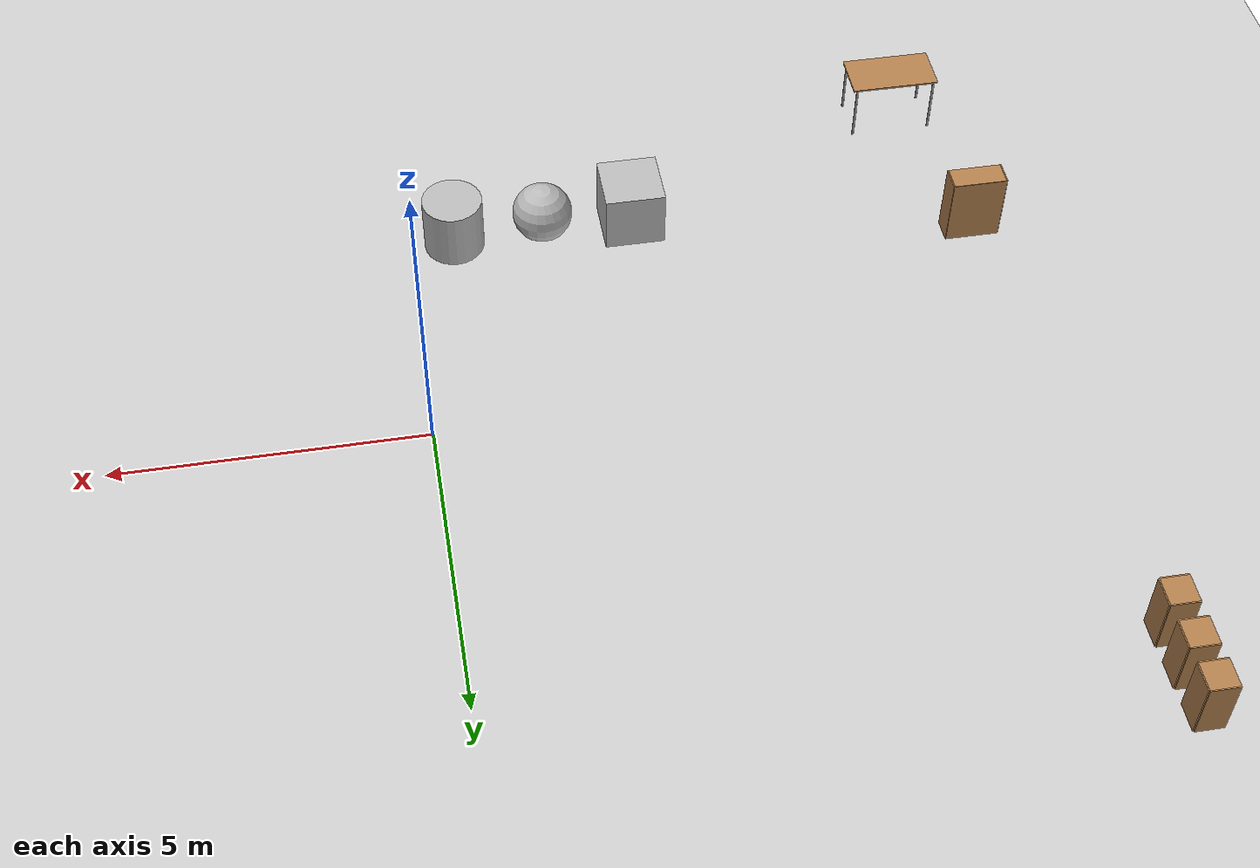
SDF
<sdf version="1.6">
 <world name="default">
  <model name="ground_plane">
   <static>1</static>
   <link name="link">
    <collision name="collision">
     <geometry><plane><normal>0 0 1</normal><size>100 100</size></plane></geometry>
     <surface><friction><ode><mu>100</mu><mu2>50</mu2></ode></friction></surface>
    </collision>
    <visual name="visual">
     <cast_shadows>0</cast_shadows>
     <geometry><plane><normal>0 0 1</normal><size>100 100</size></plane></geometry>
     <material>
      <script><uri>file://media/materials/scripts/gazebo.material</uri><name>Gazebo/Grey</name></script>
     </material>
    </visual>
   </link>
  </model>
  <model name="bookshelf">
   <static>1</static>
   <link name="link">
    <inertial><mass>1</mass></inertial>
    <collision name="back">
     <pose>0 0.005 0.6 0 -0 0</pose>
     <geometry><box><size>0.9 0.01 1.2</size></box></geometry>
    </collision>
    <visual name="visual1">
     <pose>0 0.005 0.6 0 -0 0</pose>
     <geometry><box><size>0.9 0.01 1.2</size></box></geometry>
     <material>
      <script><uri>file://media/materials/scripts/gazebo.material</uri><name>Gazebo/Wood</name></script>
     </material>
    </visual>
    <collision name="left_side">
     <pose>0.45 -0.195 0.6 0 -0 0</pose>
     <geometry><box><size>0.02 0.4 1.2</size></box></geometry>
    </collision>
    <visual name="visual2">
     <pose>0.45 -0.195 0.6 0 -0 0</pose>
     <geometry><box><size>0.02 0.4 1.2</size></box></geometry>
     <material>
      <script><uri>file://media/materials/scripts/gazebo.material</uri><name>Gazebo/Wood</name></script>
     </material>
    </visual>
    <collision name="right_side">
     <pose>-0.45 -0.195 0.6 0 -0 0</pose>
     <geometry><box><size>0.02 0.4 1.2</size></box></geometry>
    </collision>
    <visual name="visual3">
     <pose>-0.45 -0.195 0.6 0 -0 0</pose>
     <geometry><box><size>0.02 0.4 1.2</size></box></geometry>
     <material>
      <script><uri>file://media/materials/scripts/gazebo.material</uri><name>Gazebo/Wood</name></script>
     </material>
    </visual>
    <collision name="bottom">
     <pose>0 -0.195 0.03 0 -0 0</pose>
     <geometry><box><size>0.88 0.4 0.06</size></box></geometry>
    </collision>
    <visual name="visual4">
     <pose>0 -0.195 0.03 0 -0 0</pose>
     <geometry><box><size>0.88 0.4 0.06</size></box></geometry>
     <material>
      <script><uri>file://media/materials/scripts/gazebo.material</uri><name>Gazebo/Wood</name></script>
     </material>
    </visual>
    <collision name="top">
     <pose>0 -0.195 1.19 0 -0 0</pose>
     <geometry><box><size>0.88 0.4 0.02</size></box></geometry>
    </collision>
    <visual name="visual5">
     <pose>0 -0.195 1.19 0 -0 0</pose>
     <geometry><box><size>0.88 0.4 0.02</size></box></geometry>
     <material>
      <script><uri>file://media/materials/scripts/gazebo.material</uri><name>Gazebo/Wood</name></script>
     </material>
    </visual>
    <collision name="low_shelf">
     <pose>0 -0.195 0.43 0 -0 0</pose>
     <geometry><box><size>0.88 0.4 0.02</size></box></geometry>
    </collision>
    <visual name="visual6">
     <pose>0 -0.195 0.43 0 -0 0</pose>
     <geometry><box><size>0.88 0.4 0.02</size></box></geometry>
     <material>
      <script><uri>file://media/materials/scripts/gazebo.material</uri><name>Gazebo/Wood</name></script>
     </material>
    </visual>
    <collision name="high_shelf">
     <pose>0 -0.195 0.8 0 -0 0</pose>
     <geometry><box><size>0.88 0.4 0.02</size></box></geometry>
    </collision>
    <visual name="visual7">
     <pose>0 -0.195 0.8 0 -0 0</pose>
     <geometry><box><size>0.88 0.4 0.02</size></box></geometry>
     <material>
      <script><uri>file://media/materials/scripts/gazebo.material</uri><name>Gazebo/Wood</name></script>
     </material>
    </visual>
   </link>
   <pose>-9.45536 -2.89364 0 0 -0 0</pose>
  </model>
  <model name="textured_shapes">
   <pose>-2.31268 -4.11713 0.5 0 0 -1.57081</pose>
   <link name="box">
    <pose>0 -1.5 0 0 -0 0</pose>
    <collision name="collision"><geometry><box><size>1 1 1</size></box></geometry></collision>
    <visual name="visual">
     <geometry><box><size>1 1 1</size></box></geometry>
     <material>
      <script>
       <uri>model://textured_shapes/materials/scripts</uri>
       <uri>model://textured_shapes/materials/textures</uri>
       <name>TexturedShape/Squares</name>
      </script>
     </material>
    </visual>
    <inertial>
     <inertia><ixx>1</ixx><ixy>0</ixy><ixz>0</ixz><iyy>1</iyy><iyz>0</iyz><izz>1</izz></inertia>
     <mass>1</mass>
    </inertial>
   </link>
   <link name="sphere">
    <collision name="collision"><geometry><sphere><radius>0.5</radius></sphere></geometry></collision>
    <visual name="visual">
     <geometry><sphere><radius>0.5</radius></sphere></geometry>
     <material>
      <script>
       <uri>model://textured_shapes/materials/scripts</uri>
       <uri>model://textured_shapes/materials/textures</uri>
       <name>TexturedShape/Squares</name>
      </script>
     </material>
    </visual>
    <inertial>
     <inertia><ixx>1</ixx><ixy>0</ixy><ixz>0</ixz><iyy>1</iyy><iyz>0</iyz><izz>1</izz></inertia>
     <mass>1</mass>
    </inertial>
   </link>
   <link name="cylinder">
    <pose>0 1.5 0 0 -0 0</pose>
    <collision name="collision">
     <geometry><cylinder><radius>0.5</radius><length>1</length></cylinder></geometry>
    </collision>
    <visual name="visual">
     <geometry><cylinder><radius>0.5</radius><length>1</length></cylinder></geometry>
     <material>
      <script>
       <uri>model://textured_shapes/materials/scripts</uri>
       <uri>model://textured_shapes/materials/textures</uri>
       <name>TexturedShape/Squares</name>
      </script>
     </material>
    </visual>
    <inertial>
     <inertia><ixx>1</ixx><ixy>0</ixy><ixz>0</ixz><iyy>1</iyy><iyz>0</iyz><izz>1</izz></inertia>
     <mass>1</mass>
    </inertial>
   </link>
  </model>
  <model name="table_0">
   <static>1</static>
   <link name="link">
    <collision name="surface">
     <pose>0 0 1 0 -0 0</pose>
     <geometry><box><size>1.5 0.8 0.03</size></box></geometry>
     <surface><friction><ode><mu>0.6</mu><mu2>0.6</mu2></ode></friction></surface>
    </collision>
    <visual name="visual1">
     <pose>0 0 1 0 -0 0</pose>
     <geometry><box><size>1.5 0.8 0.03</size></box></geometry>
     <material>
      <script><uri>file://media/materials/scripts/gazebo.material</uri><name>Gazebo/Wood</name></script>
     </material>
    </visual>
    <collision name="front_left_leg">
     <pose>0.68 0.38 0.5 0 -0 0</pose>
     <geometry><cylinder><radius>0.02</radius><length>1</length></cylinder></geometry>
    </collision>
    <visual name="front_left_leg">
     <pose>0.68 0.38 0.5 0 -0 0</pose>
     <geometry><cylinder><radius>0.02</radius><length>1</length></cylinder></geometry>
     <material>
      <script><uri>file://media/materials/scripts/gazebo.material</uri><name>Gazebo/Grey</name></script>
     </material>
    </visual>
    <collision name="front_right_leg">
     <pose>0.68 -0.38 0.5 0 -0 0</pose>
     <geometry><cylinder><radius>0.02</radius><length>1</length></cylinder></geometry>
    </collision>
    <visual name="front_right_leg">
     <pose>0.68 -0.38 0.5 0 -0 0</pose>
     <geometry><cylinder><radius>0.02</radius><length>1</length></cylinder></geometry>
     <material>
      <script><uri>file://media/materials/scripts/gazebo.material</uri><name>Gazebo/Grey</name></script>
     </material>
    </visual>
    <collision name="back_right_leg">
     <pose>-0.68 -0.38 0.5 0 -0 0</pose>
     <geometry><cylinder><radius>0.02</radius><length>1</length></cylinder></geometry>
    </collision>
    <visual name="back_right_leg">
     <pose>-0.68 -0.38 0.5 0 -0 0</pose>
     <geometry><cylinder><radius>0.02</radius><length>1</length></cylinder></geometry>
     <material>
      <script><uri>file://media/materials/scripts/gazebo.material</uri><name>Gazebo/Grey</name></script>
     </material>
    </visual>
    <collision name="back_left_leg">
     <pose>-0.68 0.38 0.5 0 -0 0</pose>
     <geometry><cylinder><radius>0.02</radius><length>1</length></cylinder></geometry>
    </collision>
    <visual name="back_left_leg">
     <pose>-0.68 0.38 0.5 0 -0 0</pose>
     <geometry><cylinder><radius>0.02</radius><length>1</length></cylinder></geometry>
     <material>
      <script><uri>file://media/materials/scripts/gazebo.material</uri><name>Gazebo/Grey</name></script>
     </material>
    </visual>
   </link>
   <pose>-8.77227 -6.08976 0 0 -0 0</pose>
  </model>
  <model name="cabinet_0">
   <static>1</static>
   <link name="cabinet_bottom_plate">
    <inertial>
     <pose>0 0 -1 0 -0 0</pose>
     <inertia><ixx>2.05</ixx><ixy>0</ixy><ixz>0</ixz><iyy>2.05</iyy><iyz>0</iyz><izz>2.05</izz></inertia>
     <mass>25</mass>
    </inertial>
    <collision name="cabinet_bottom_plate_geom">
     <pose>0 0 0.01 0 -0 0</pose>
     <geometry><box><size>0.45 0.45 0.02</size></box></geometry>
    </collision>
    <visual name="cabinet_bottom_plate_geom_visual">
     <pose>0 0 0.01 0 -0 0</pose>
     <geometry><box><size>0.45 0.45 0.02</size></box></geometry>
     <material>
      <script><uri>file://media/materials/scripts/gazebo.material</uri><name>Gazebo/Wood</name></script>
     </material>
    </visual>
    <collision name="cabinet_bottom_plate_geom_cabinet_back_plate">
     <pose>0.235 0 0.51 0 -0 0</pose>
     <geometry><box><size>0.02 0.45 1.02</size></box></geometry>
    </collision>
    <visual name="cabinet_bottom_plate_geom_cabinet_back_plate_visual">
     <pose>0.235 0 0.51 0 -0 0</pose>
     <geometry><box><size>0.02 0.45 1.02</size></box></geometry>
     <material>
      <script><uri>file://media/materials/scripts/gazebo.material</uri><name>Gazebo/Wood</name></script>
     </material>
    </visual>
    <collision name="cabinet_bottom_plate_geom_cabinet_left_plate">
     <pose>0 0.235 0.51 0 -0 0</pose>
     <geometry><box><size>0.45 0.02 1.02</size></box></geometry>
    </collision>
    <visual name="cabinet_bottom_plate_geom_cabinet_left_plate_visual">
     <pose>0 0.235 0.51 0 -0 0</pose>
     <geometry><box><size>0.45 0.02 1.02</size></box></geometry>
     <material>
      <script><uri>file://media/materials/scripts/gazebo.material</uri><name>Gazebo/Wood</name></script>
     </material>
    </visual>
    <collision name="cabinet_bottom_plate_geom_cabinet_middle_plate">
     <pose>0 0 0.51 0 -0 0</pose>
     <geometry><box><size>0.45 0.45 0.02</size></box></geometry>
    </collision>
    <visual name="cabinet_bottom_plate_geom_cabinet_middle_plate_visual">
     <pose>0 0 0.51 0 -0 0</pose>
     <geometry><box><size>0.45 0.45 0.02</size></box></geometry>
     <material>
      <script><uri>file://media/materials/scripts/gazebo.material</uri><name>Gazebo/Wood</name></script>
     </material>
    </visual>
    <collision name="cabinet_bottom_plate_geom_cabinet_right_plate">
     <pose>0 -0.235 0.51 0 -0 0</pose>
     <geometry><box><size>0.45 0.02 1.02</size></box></geometry>
    </collision>
    <visual name="cabinet_bottom_plate_geom_cabinet_right_plate_visual">
     <pose>0 -0.235 0.51 0 -0 0</pose>
     <geometry><box><size>0.45 0.02 1.02</size></box></geometry>
     <material>
      <script><uri>file://media/materials/scripts/gazebo.material</uri><name>Gazebo/Wood</name></script>
     </material>
    </visual>
    <collision name="cabinet_bottom_plate_geom_cabinet_top_plate">
     <pose>0 0 1.01 0 -0 0</pose>
     <geometry><box><size>0.45 0.45 0.02</size></box></geometry>
    </collision>
    <visual name="cabinet_bottom_plate_geom_cabinet_top_plate_visual">
     <pose>0 0 1.01 0 -0 0</pose>
     <geometry><box><size>0.45 0.45 0.02</size></box></geometry>
     <material>
      <script><uri>file://media/materials/scripts/gazebo.material</uri><name>Gazebo/Wood</name></script>
     </material>
    </visual>
   </link>
   <pose>-9.99404 6.72267 0 0 -0 0</pose>
  </model>
  <model name="cabinet_1">
   <static>1</static>
   <link name="cabinet_bottom_plate">
    <inertial>
     <pose>0 0 -1 0 -0 0</pose>
     <inertia><ixx>2.05</ixx><ixy>0</ixy><ixz>0</ixz><iyy>2.05</iyy><iyz>0</iyz><izz>2.05</izz></inertia>
     <mass>25</mass>
    </inertial>
    <collision name="cabinet_bottom_plate_geom">
     <pose>0 0 0.01 0 -0 0</pose>
     <geometry><box><size>0.45 0.45 0.02</size></box></geometry>
    </collision>
    <visual name="cabinet_bottom_plate_geom_visual">
     <pose>0 0 0.01 0 -0 0</pose>
     <geometry><box><size>0.45 0.45 0.02</size></box></geometry>
     <material>
      <script><uri>file://media/materials/scripts/gazebo.material</uri><name>Gazebo/Wood</name></script>
     </material>
    </visual>
    <collision name="cabinet_bottom_plate_geom_cabinet_back_plate">
     <pose>0.235 0 0.51 0 -0 0</pose>
     <geometry><box><size>0.02 0.45 1.02</size></box></geometry>
    </collision>
    <visual name="cabinet_bottom_plate_geom_cabinet_back_plate_visual">
     <pose>0.235 0 0.51 0 -0 0</pose>
     <geometry><box><size>0.02 0.45 1.02</size></box></geometry>
     <material>
      <script><uri>file://media/materials/scripts/gazebo.material</uri><name>Gazebo/Wood</name></script>
     </material>
    </visual>
    <collision name="cabinet_bottom_plate_geom_cabinet_left_plate">
     <pose>0 0.235 0.51 0 -0 0</pose>
     <geometry><box><size>0.45 0.02 1.02</size></box></geometry>
    </collision>
    <visual name="cabinet_bottom_plate_geom_cabinet_left_plate_visual">
     <pose>0 0.235 0.51 0 -0 0</pose>
     <geometry><box><size>0.45 0.02 1.02</size></box></geometry>
     <material>
      <script><uri>file://media/materials/scripts/gazebo.material</uri><name>Gazebo/Wood</name></script>
     </material>
    </visual>
    <collision name="cabinet_bottom_plate_geom_cabinet_middle_plate">
     <pose>0 0 0.51 0 -0 0</pose>
     <geometry><box><size>0.45 0.45 0.02</size></box></geometry>
    </collision>
    <visual name="cabinet_bottom_plate_geom_cabinet_middle_plate_visual">
     <pose>0 0 0.51 0 -0 0</pose>
     <geometry><box><size>0.45 0.45 0.02</size></box></geometry>
     <material>
      <script><uri>file://media/materials/scripts/gazebo.material</uri><name>Gazebo/Wood</name></script>
     </material>
    </visual>
    <collision name="cabinet_bottom_plate_geom_cabinet_right_plate">
     <pose>0 -0.235 0.51 0 -0 0</pose>
     <geometry><box><size>0.45 0.02 1.02</size></box></geometry>
    </collision>
    <visual name="cabinet_bottom_plate_geom_cabinet_right_plate_visual">
     <pose>0 -0.235 0.51 0 -0 0</pose>
     <geometry><box><size>0.45 0.02 1.02</size></box></geometry>
     <material>
      <script><uri>file://media/materials/scripts/gazebo.material</uri><name>Gazebo/Wood</name></script>
     </material>
    </visual>
    <collision name="cabinet_bottom_plate_geom_cabinet_top_plate">
     <pose>0 0 1.01 0 -0 0</pose>
     <geometry><box><size>0.45 0.45 0.02</size></box></geometry>
    </collision>
    <visual name="cabinet_bottom_plate_geom_cabinet_top_plate_visual">
     <pose>0 0 1.01 0 -0 0</pose>
     <geometry><box><size>0.45 0.45 0.02</size></box></geometry>
     <material>
      <script><uri>file://media/materials/scripts/gazebo.material</uri><name>Gazebo/Wood</name></script>
     </material>
    </visual>
   </link>
   <pose>-9.97067 6.02449 0 0 -0 0</pose>
  </model>
  <model name="cabinet_2">
   <static>1</static>
   <link name="cabinet_bottom_plate">
    <inertial>
     <pose>0 0 -1 0 -0 0</pose>
     <inertia><ixx>2.05</ixx><ixy>0</ixy><ixz>0</ixz><iyy>2.05</iyy><iyz>0</iyz><izz>2.05</izz></inertia>
     <mass>25</mass>
    </inertial>
    <collision name="cabinet_bottom_plate_geom">
     <pose>0 0 0.01 0 -0 0</pose>
     <geometry><box><size>0.45 0.45 0.02</size></box></geometry>
    </collision>
    <visual name="cabinet_bottom_plate_geom_visual">
     <pose>0 0 0.01 0 -0 0</pose>
     <geometry><box><size>0.45 0.45 0.02</size></box></geometry>
     <material>
      <script><uri>file://media/materials/scripts/gazebo.material</uri><name>Gazebo/Wood</name></script>
     </material>
    </visual>
    <collision name="cabinet_bottom_plate_geom_cabinet_back_plate">
     <pose>0.235 0 0.51 0 -0 0</pose>
     <geometry><box><size>0.02 0.45 1.02</size></box></geometry>
    </collision>
    <visual name="cabinet_bottom_plate_geom_cabinet_back_plate_visual">
     <pose>0.235 0 0.51 0 -0 0</pose>
     <geometry><box><size>0.02 0.45 1.02</size></box></geometry>
     <material>
      <script><uri>file://media/materials/scripts/gazebo.material</uri><name>Gazebo/Wood</name></script>
     </material>
    </visual>
    <collision name="cabinet_bottom_plate_geom_cabinet_left_plate">
     <pose>0 0.235 0.51 0 -0 0</pose>
     <geometry><box><size>0.45 0.02 1.02</size></box></geometry>
    </collision>
    <visual name="cabinet_bottom_plate_geom_cabinet_left_plate_visual">
     <pose>0 0.235 0.51 0 -0 0</pose>
     <geometry><box><size>0.45 0.02 1.02</size></box></geometry>
     <material>
      <script><uri>file://media/materials/scripts/gazebo.material</uri><name>Gazebo/Wood</name></script>
     </material>
    </visual>
    <collision name="cabinet_bottom_plate_geom_cabinet_middle_plate">
     <pose>0 0 0.51 0 -0 0</pose>
     <geometry><box><size>0.45 0.45 0.02</size></box></geometry>
    </collision>
    <visual name="cabinet_bottom_plate_geom_cabinet_middle_plate_visual">
     <pose>0 0 0.51 0 -0 0</pose>
     <geometry><box><size>0.45 0.45 0.02</size></box></geometry>
     <material>
      <script><uri>file://media/materials/scripts/gazebo.material</uri><name>Gazebo/Wood</name></script>
     </material>
    </visual>
    <collision name="cabinet_bottom_plate_geom_cabinet_right_plate">
     <pose>0 -0.235 0.51 0 -0 0</pose>
     <geometry><box><size>0.45 0.02 1.02</size></box></geometry>
    </collision>
    <visual name="cabinet_bottom_plate_geom_cabinet_right_plate_visual">
     <pose>0 -0.235 0.51 0 -0 0</pose>
     <geometry><box><size>0.45 0.02 1.02</size></box></geometry>
     <material>
      <script><uri>file://media/materials/scripts/gazebo.material</uri><name>Gazebo/Wood</name></script>
     </material>
    </visual>
    <collision name="cabinet_bottom_plate_geom_cabinet_top_plate">
     <pose>0 0 1.01 0 -0 0</pose>
     <geometry><box><size>0.45 0.45 0.02</size></box></geometry>
    </collision>
    <visual name="cabinet_bottom_plate_geom_cabinet_top_plate_visual">
     <pose>0 0 1.01 0 -0 0</pose>
     <geometry><box><size>0.45 0.45 0.02</size></box></geometry>
     <material>
      <script><uri>file://media/materials/scripts/gazebo.material</uri><name>Gazebo/Wood</name></script>
     </material>
    </visual>
   </link>
   <pose>-9.95054 5.30725 0 0 -0 0</pose>
  </model>
 </world>
</sdf>
